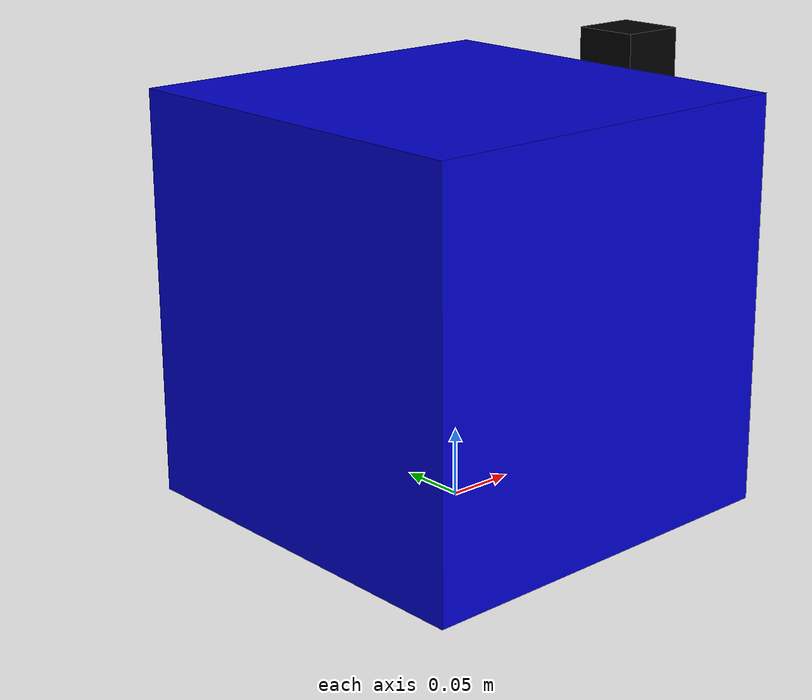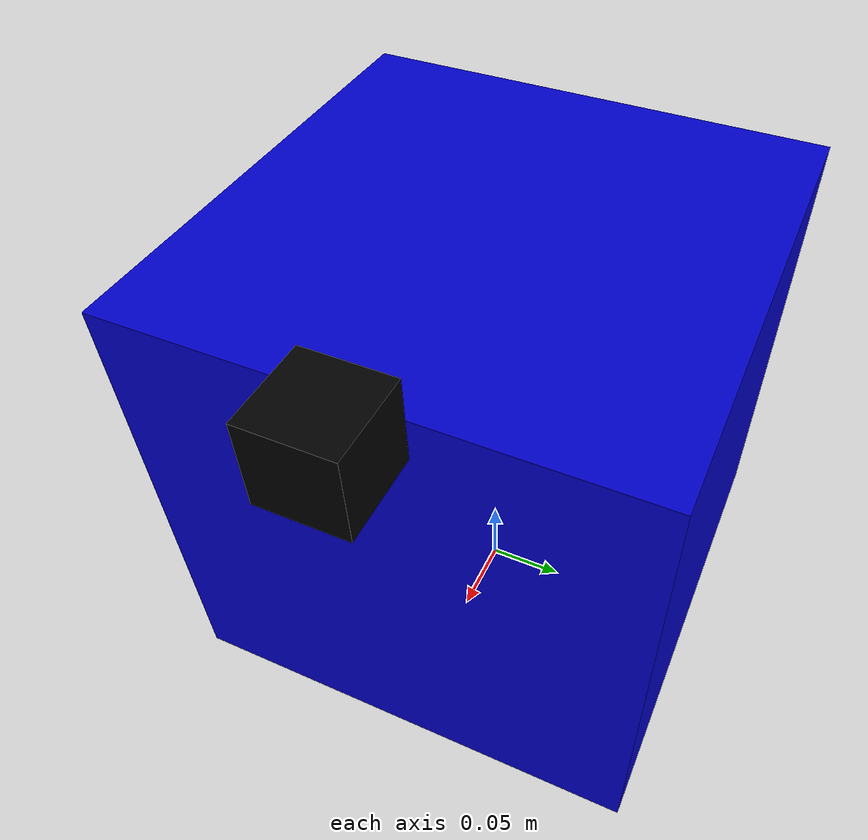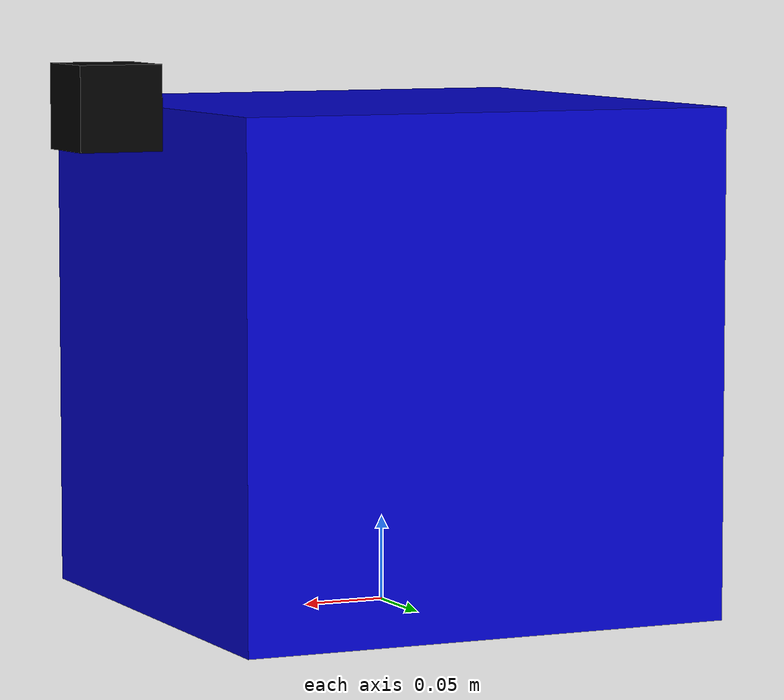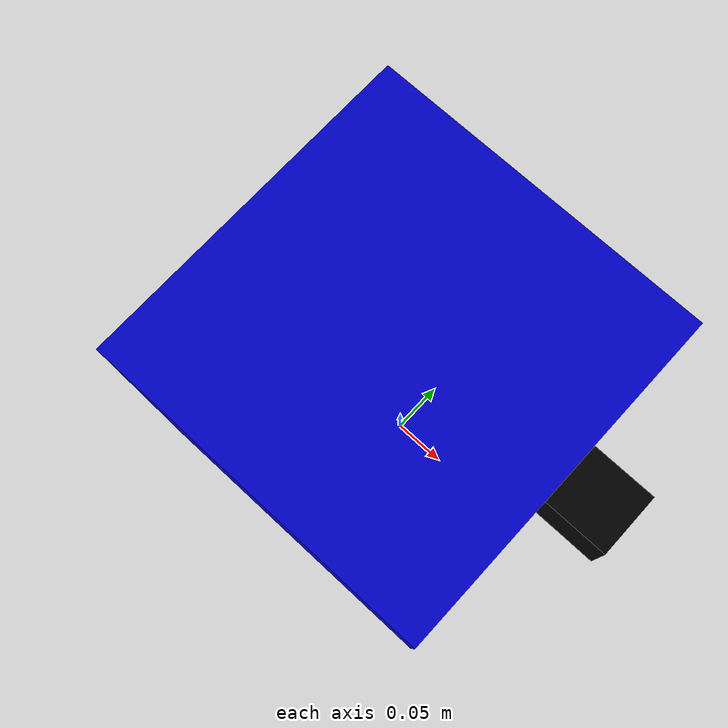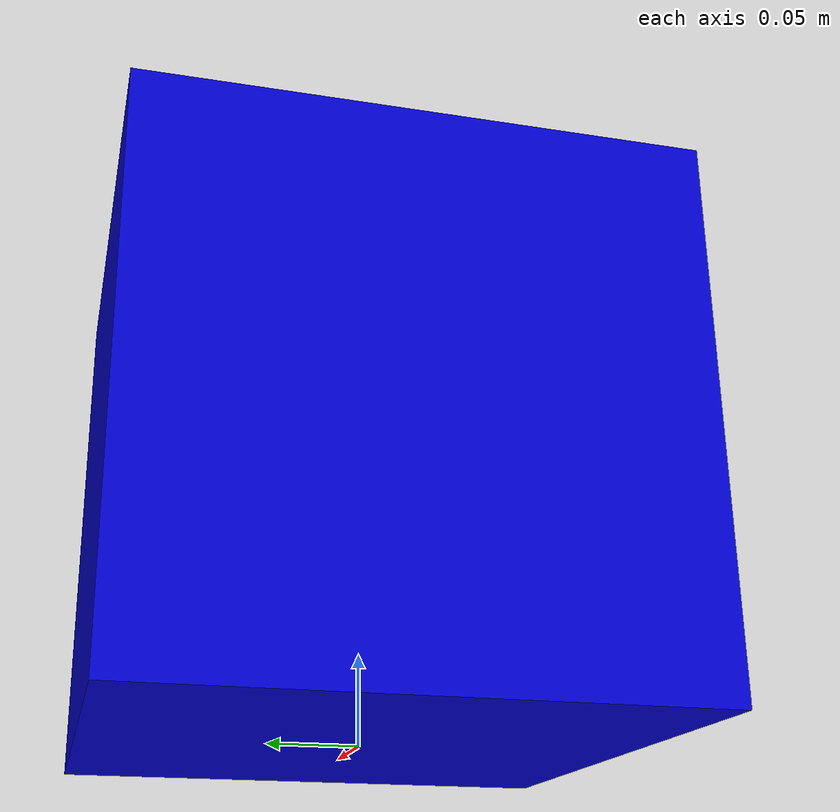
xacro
<?xml version="1.0"?>
<robot xmlns:xacro="http://www.ros.org/wiki/xacro" name="camera_robot">

  <!-- Properties -->
  <xacro:property name="box_size" value="0.3" />
  <xacro:property name="camera_size" value="0.05" />

  <!-- Materials -->
  <material name="blue">
    <color rgba="0 0 0.8 1"/>
  </material>

  <material name="black">
    <color rgba="0 0 0 1"/>
  </material>

  <!-- Base link -->
  <link name="cam_base_link">
    <visual>
      <origin xyz="0 0 ${box_size/2}" rpy="0 0 0"/>
      <geometry>
        <box size="${box_size} ${box_size} ${box_size}"/>
      </geometry>
      <material name="blue"/>
    </visual>

    <collision>
      <origin xyz="0 0 ${box_size/2}" rpy="0 0 0"/>
      <geometry>
        <box size="${box_size} ${box_size} ${box_size}"/>
      </geometry>
    </collision>

    <inertial>
      <origin xyz="0 0 ${box_size/2}" rpy="0 0 0"/>
      <mass value="1"/>
      <inertia
        ixx="${1/12*1*(box_size*box_size+box_size*box_size)}" ixy="0.0" ixz="0.0"
        iyy="${1/12*1*(box_size*box_size+box_size*box_size)}" iyz="0.0"
        izz="${1/12*1*(box_size*box_size+box_size*box_size)}"/>
    </inertial>
  </link>

  <!-- Camera link -->
  <link name="camera_link">
    <visual>
      <origin xyz="0 0 0" rpy="0 0 0"/>
      <geometry>
        <box size="${camera_size} ${camera_size} ${camera_size}"/>
      </geometry>
      <material name="black"/>
    </visual>

    <collision>
      <origin xyz="0 0 0" rpy="0 0 0"/>
      <geometry>
        <box size="${camera_size} ${camera_size} ${camera_size}"/>
      </geometry>
    </collision>

    <inertial>
      <origin xyz="0 0 0" rpy="0 0 0"/>
      <mass value="0.1"/>
      <inertia
        ixx="${1/12*0.1*(camera_size*camera_size+camera_size*camera_size)}" ixy="0.0" ixz="0.0"
        iyy="${1/12*0.1*(camera_size*camera_size+camera_size*camera_size)}" iyz="0.0"
        izz="${1/12*0.1*(camera_size*camera_size+camera_size*camera_size)}"/>
    </inertial>
  </link>

  <!-- Camera joint -->
  <joint name="camera_joint" type="fixed">
    <parent link="cam_base_link"/>
    <child link="camera_link"/>
    <origin xyz="${box_size/2 + camera_size/2} 0 ${box_size}" rpy="0 0 0"/>
  </joint>

  <!-- Camera optical link -->
  <link name="camera_optical_link"/>

  <!-- Camera optical joint -->
  <joint name="camera_optical_joint" type="fixed">
    <parent link="camera_link"/>
    <child link="camera_optical_link"/>
    <origin xyz="0 0 0" rpy="-1.5708 0 -1.5708"/>
  </joint>

  <!-- Gazebo materials -->
  <gazebo reference="camera_support_link">
    <material>Gazebo/Blue</material>
  </gazebo>

  <gazebo reference="camera_link">
    <material>Gazebo/Black</material>
  </gazebo>

  <!-- Camera plugin -->
  <gazebo reference="camera_link">
    <sensor type="camera" name="camera1">
      <update_rate>30.0</update_rate>
      <camera name="head">
        <horizontal_fov>1.3962634</horizontal_fov>
        <image>
          <width>800</width>
          <height>600</height>
          <format>R8G8B8</format>
        </image>
        <clip>
          <near>0.02</near>
          <far>300</far>
        </clip>
        <noise>
          <type>gaussian</type>
          <mean>0.0</mean>
          <stddev>0.007</stddev>
        </noise>
      </camera>
      <plugin name="camera_controller" filename="libgazebo_ros_camera.so">
        <alwaysOn>true</alwaysOn>
        <updateRate>0.0</updateRate>
        <cameraName>camera</cameraName>
        <imageTopicName>image_raw</imageTopicName>
        <cameraInfoTopicName>camera_info</cameraInfoTopicName>
        <frameName>camera_optical_link</frameName>
        <hackBaseline>0.07</hackBaseline>
        <distortionK1>0.0</distortionK1>
        <distortionK2>0.0</distortionK2>
        <distortionK3>0.0</distortionK3>
        <distortionT1>0.0</distortionT1>
        <distortionT2>0.0</distortionT2>
      </plugin>
    </sensor>
  </gazebo>

</robot>
